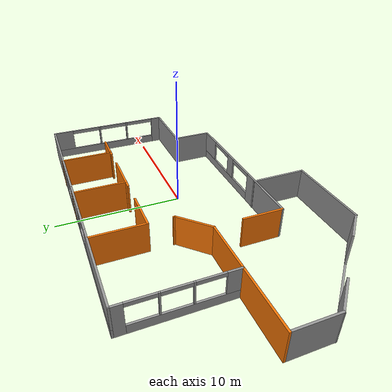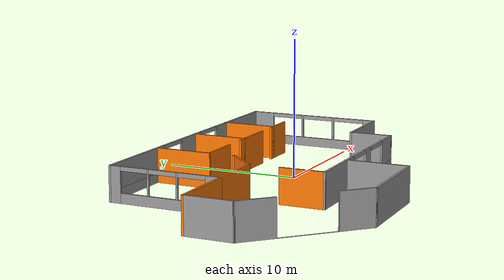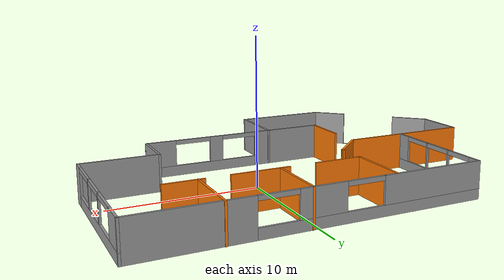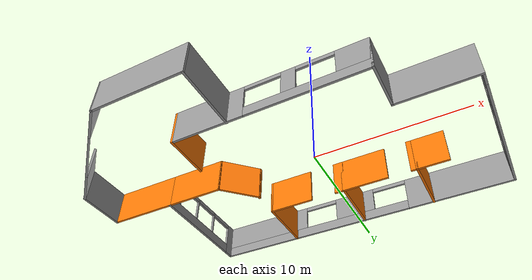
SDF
<?xml version='1.0'?>
<sdf version='1.6'>
  <model name='office_walls'>
    <pose frame=''>-2.62192 -0.658605 0 0 -0 0</pose>
    <link name='Wall_10'>
      <pose frame=''>1.96553 -4.56463 0 0 -0 0</pose>
      <visual name='Wall_10_Visual_0'>
        <pose frame=''>-4.05781 0 1.25 0 -0 0</pose>
        <geometry>
          <box>
            <size>5.13439 0.15 2.5</size>
          </box>
        </geometry>
        <material>
          <script>
            <uri>file://media/materials/scripts/gazebo.material</uri>
            <name>Gazebo/Grey</name>
          </script>
          <ambient>1 1 1 1</ambient>
        </material>
        <meta>
          <layer>0</layer>
        </meta>
      </visual>
      <collision name='Wall_10_Collision_0'>
        <geometry>
          <box>
            <size>5.13439 0.15 2.5</size>
          </box>
        </geometry>
        <pose frame=''>-4.05781 0 1.25 0 -0 0</pose>
      </collision>
      <visual name='Wall_10_Visual_1'>
        <pose frame=''>2.56719 0 0.35 0 -0 0</pose>
        <geometry>
          <box>
            <size>8.11561 0.15 0.7</size>
          </box>
        </geometry>
        <material>
          <script>
            <uri>file://media/materials/scripts/gazebo.material</uri>
            <name>Gazebo/Grey</name>
          </script>
          <ambient>1 1 1 1</ambient>
        </material>
        <meta>
          <layer>0</layer>
        </meta>
      </visual>
      <collision name='Wall_10_Collision_1'>
        <geometry>
          <box>
            <size>8.11561 0.15 0.7</size>
          </box>
        </geometry>
        <pose frame=''>2.56719 0 0.35 0 -0 0</pose>
      </collision>
      <visual name='Wall_10_Visual_2'>
        <pose frame=''>1.49239 0 1.6 0 -0 0</pose>
        <geometry>
          <box>
            <size>0.966 0.15 1.8</size>
          </box>
        </geometry>
        <material>
          <script>
            <uri>file://media/materials/scripts/gazebo.material</uri>
            <name>Gazebo/Grey</name>
          </script>
          <ambient>1 1 1 1</ambient>
        </material>
        <meta>
          <layer>0</layer>
        </meta>
      </visual>
      <collision name='Wall_10_Collision_2'>
        <geometry>
          <box>
            <size>0.966 0.15 1.8</size>
          </box>
        </geometry>
        <pose frame=''>1.49239 0 1.6 0 -0 0</pose>
      </collision>
      <visual name='Wall_10_Visual_3'>
        <pose frame=''>5.5502 0 1.6 0 -0 0</pose>
        <geometry>
          <box>
            <size>2.14961 0.15 1.8</size>
          </box>
        </geometry>
        <material>
          <script>
            <uri>file://media/materials/scripts/gazebo.material</uri>
            <name>Gazebo/Grey</name>
          </script>
          <ambient>1 1 1 1</ambient>
        </material>
        <meta>
          <layer>0</layer>
        </meta>
      </visual>
      <collision name='Wall_10_Collision_3'>
        <geometry>
          <box>
            <size>2.14961 0.15 1.8</size>
          </box>
        </geometry>
        <pose frame=''>5.5502 0 1.6 0 -0 0</pose>
      </collision>
      <visual name='Wall_10_Visual_4'>
        <pose frame=''>-0.240611 0 2.35 0 -0 0</pose>
        <geometry>
          <box>
            <size>2.5 0.15 0.3</size>
          </box>
        </geometry>
        <material>
          <script>
            <uri>file://media/materials/scripts/gazebo.material</uri>
            <name>Gazebo/Grey</name>
          </script>
          <ambient>1 1 1 1</ambient>
        </material>
        <meta>
          <layer>0</layer>
        </meta>
      </visual>
      <collision name='Wall_10_Collision_4'>
        <geometry>
          <box>
            <size>2.5 0.15 0.3</size>
          </box>
        </geometry>
        <pose frame=''>-0.240611 0 2.35 0 -0 0</pose>
      </collision>
      <visual name='Wall_10_Visual_5'>
        <pose frame=''>3.22539 0 2.35 0 -0 0</pose>
        <geometry>
          <box>
            <size>2.5 0.15 0.3</size>
          </box>
        </geometry>
        <material>
          <script>
            <uri>file://media/materials/scripts/gazebo.material</uri>
            <name>Gazebo/Grey</name>
          </script>
          <ambient>1 1 1 1</ambient>
        </material>
        <meta>
          <layer>0</layer>
        </meta>
      </visual>
      <collision name='Wall_10_Collision_5'>
        <geometry>
          <box>
            <size>2.5 0.15 0.3</size>
          </box>
        </geometry>
        <pose frame=''>3.22539 0 2.35 0 -0 0</pose>
      </collision>
    </link>
    <link name='Wall_11'>
      <collision name='Wall_11_Collision'>
        <geometry>
          <box>
            <size>3.25 0.15 2.5</size>
          </box>
        </geometry>
        <pose frame=''>0 0 1.25 0 -0 0</pose>
      </collision>
      <visual name='Wall_11_Visual'>
        <pose frame=''>0 0 1.25 0 -0 0</pose>
        <geometry>
          <box>
            <size>3.25 0.15 2.5</size>
          </box>
        </geometry>
        <material>
          <script>
            <uri>file://media/materials/scripts/gazebo.material</uri>
            <name>Gazebo/Grey</name>
          </script>
          <ambient>1 1 1 1</ambient>
        </material>
        <meta>
          <layer>0</layer>
        </meta>
      </visual>
      <pose frame=''>8.51553 -3.01463 0 0 -0 1.5708</pose>
    </link>
    <link name='Wall_12'>
      <collision name='Wall_12_Collision'>
        <geometry>
          <box>
            <size>5.25 0.15 2.5</size>
          </box>
        </geometry>
        <pose frame=''>0 0 1.25 0 -0 0</pose>
      </collision>
      <visual name='Wall_12_Visual'>
        <pose frame=''>0 0 1.25 0 -0 0</pose>
        <geometry>
          <box>
            <size>5.25 0.15 2.5</size>
          </box>
        </geometry>
        <material>
          <script>
            <uri>file://media/materials/scripts/gazebo.material</uri>
            <name>Gazebo/Grey</name>
          </script>
          <ambient>1 1 1 1</ambient>
        </material>
        <meta>
          <layer>0</layer>
        </meta>
      </visual>
      <pose frame=''>11.0655 -1.46463 0 0 -0 0</pose>
    </link>
    <link name='Wall_14'>
      <pose frame=''>13.6155 3.71037 0 0 -0 1.5708</pose>
      <visual name='Wall_14_Visual_0'>
        <pose frame=''>-4.77588 0 1.25 0 -0 0</pose>
        <geometry>
          <box>
            <size>0.948232 0.15 2.5</size>
          </box>
        </geometry>
        <material>
          <script>
            <uri>file://media/materials/scripts/gazebo.material</uri>
            <name>Gazebo/Grey</name>
          </script>
          <ambient>1 1 1 1</ambient>
        </material>
        <meta>
          <layer>0</layer>
        </meta>
      </visual>
      <collision name='Wall_14_Collision_0'>
        <geometry>
          <box>
            <size>0.948232 0.15 2.5</size>
          </box>
        </geometry>
        <pose frame=''>-4.77588 0 1.25 0 -0 0</pose>
      </collision>
      <visual name='Wall_14_Visual_1'>
        <pose frame=''>0.474116 0 0.35 0 -0 0</pose>
        <geometry>
          <box>
            <size>9.55177 0.15 0.7</size>
          </box>
        </geometry>
        <material>
          <script>
            <uri>file://media/materials/scripts/gazebo.material</uri>
            <name>Gazebo/Grey</name>
          </script>
          <ambient>1 1 1 1</ambient>
        </material>
        <meta>
          <layer>0</layer>
        </meta>
      </visual>
      <collision name='Wall_14_Collision_1'>
        <geometry>
          <box>
            <size>9.55177 0.15 0.7</size>
          </box>
        </geometry>
        <pose frame=''>0.474116 0 0.35 0 -0 0</pose>
      </collision>
      <visual name='Wall_14_Visual_2'>
        <pose frame=''>-1.72677 0 1.6 0 -0 0</pose>
        <geometry>
          <box>
            <size>0.15 0.15 1.8</size>
          </box>
        </geometry>
        <material>
          <script>
            <uri>file://media/materials/scripts/gazebo.material</uri>
            <name>Gazebo/Grey</name>
          </script>
          <ambient>1 1 1 1</ambient>
        </material>
        <meta>
          <layer>0</layer>
        </meta>
      </visual>
      <collision name='Wall_14_Collision_2'>
        <geometry>
          <box>
            <size>0.15 0.15 1.8</size>
          </box>
        </geometry>
        <pose frame=''>-1.72677 0 1.6 0 -0 0</pose>
      </collision>
      <visual name='Wall_14_Visual_3'>
        <pose frame=''>0.923233 0 1.6 0 -0 0</pose>
        <geometry>
          <box>
            <size>0.15 0.15 1.8</size>
          </box>
        </geometry>
        <material>
          <script>
            <uri>file://media/materials/scripts/gazebo.material</uri>
            <name>Gazebo/Grey</name>
          </script>
          <ambient>1 1 1 1</ambient>
        </material>
        <meta>
          <layer>0</layer>
        </meta>
      </visual>
      <collision name='Wall_14_Collision_3'>
        <geometry>
          <box>
            <size>0.15 0.15 1.8</size>
          </box>
        </geometry>
        <pose frame=''>0.923233 0 1.6 0 -0 0</pose>
      </collision>
      <visual name='Wall_14_Visual_4'>
        <pose frame=''>4.37412 0 1.6 0 -0 0</pose>
        <geometry>
          <box>
            <size>1.75177 0.15 1.8</size>
          </box>
        </geometry>
        <material>
          <script>
            <uri>file://media/materials/scripts/gazebo.material</uri>
            <name>Gazebo/Grey</name>
          </script>
          <ambient>1 1 1 1</ambient>
        </material>
        <meta>
          <layer>0</layer>
        </meta>
      </visual>
      <collision name='Wall_14_Collision_4'>
        <geometry>
          <box>
            <size>1.75177 0.15 1.8</size>
          </box>
        </geometry>
        <pose frame=''>4.37412 0 1.6 0 -0 0</pose>
      </collision>
      <visual name='Wall_14_Visual_5'>
        <pose frame=''>-3.05177 0 2.35 0 -0 0</pose>
        <geometry>
          <box>
            <size>2.5 0.15 0.3</size>
          </box>
        </geometry>
        <material>
          <script>
            <uri>file://media/materials/scripts/gazebo.material</uri>
            <name>Gazebo/Grey</name>
          </script>
          <ambient>1 1 1 1</ambient>
        </material>
        <meta>
          <layer>0</layer>
        </meta>
      </visual>
      <collision name='Wall_14_Collision_5'>
        <geometry>
          <box>
            <size>2.5 0.15 0.3</size>
          </box>
        </geometry>
        <pose frame=''>-3.05177 0 2.35 0 -0 0</pose>
      </collision>
      <visual name='Wall_14_Visual_6'>
        <pose frame=''>-0.401767 0 2.35 0 -0 0</pose>
        <geometry>
          <box>
            <size>2.5 0.15 0.3</size>
          </box>
        </geometry>
        <material>
          <script>
            <uri>file://media/materials/scripts/gazebo.material</uri>
            <name>Gazebo/Grey</name>
          </script>
          <ambient>1 1 1 1</ambient>
        </material>
        <meta>
          <layer>0</layer>
        </meta>
      </visual>
      <collision name='Wall_14_Collision_6'>
        <geometry>
          <box>
            <size>2.5 0.15 0.3</size>
          </box>
        </geometry>
        <pose frame=''>-0.401767 0 2.35 0 -0 0</pose>
      </collision>
      <visual name='Wall_14_Visual_7'>
        <pose frame=''>2.24823 0 2.35 0 -0 0</pose>
        <geometry>
          <box>
            <size>2.5 0.15 0.3</size>
          </box>
        </geometry>
        <material>
          <script>
            <uri>file://media/materials/scripts/gazebo.material</uri>
            <name>Gazebo/Grey</name>
          </script>
          <ambient>1 1 1 1</ambient>
        </material>
        <meta>
          <layer>0</layer>
        </meta>
      </visual>
      <collision name='Wall_14_Collision_7'>
        <geometry>
          <box>
            <size>2.5 0.15 0.3</size>
          </box>
        </geometry>
        <pose frame=''>2.24823 0 2.35 0 -0 0</pose>
      </collision>
    </link>
    <link name='Wall_20'>
      <pose frame=''>2.44053 8.88537 0 0 -0 3.14159</pose>
      <visual name='Wall_20_Visual_0'>
        <pose frame=''>-7.55969 0 1.25 0 -0 0</pose>
        <geometry>
          <box>
            <size>7.38061 0.15 2.5</size>
          </box>
        </geometry>
        <material>
          <script>
            <uri>file://media/materials/scripts/gazebo.material</uri>
            <name>Gazebo/Grey</name>
          </script>
          <ambient>1 1 1 1</ambient>
        </material>
        <meta>
          <layer>0</layer>
        </meta>
      </visual>
      <collision name='Wall_20_Collision_0'>
        <geometry>
          <box>
            <size>7.38061 0.15 2.5</size>
          </box>
        </geometry>
        <pose frame=''>-7.55969 0 1.25 0 -0 0</pose>
      </collision>
      <visual name='Wall_20_Visual_1'>
        <pose frame=''>3.6903 0 0.35 0 -0 0</pose>
        <geometry>
          <box>
            <size>15.1194 0.15 0.7</size>
          </box>
        </geometry>
        <material>
          <script>
            <uri>file://media/materials/scripts/gazebo.material</uri>
            <name>Gazebo/Grey</name>
          </script>
          <ambient>1 1 1 1</ambient>
        </material>
        <meta>
          <layer>0</layer>
        </meta>
      </visual>
      <collision name='Wall_20_Collision_1'>
        <geometry>
          <box>
            <size>15.1194 0.15 0.7</size>
          </box>
        </geometry>
        <pose frame=''>3.6903 0 0.35 0 -0 0</pose>
      </collision>
      <visual name='Wall_20_Visual_2'>
        <pose frame=''>0.149611 0 1.6 0 -0 0</pose>
        <geometry>
          <box>
            <size>3.038 0.15 1.8</size>
          </box>
        </geometry>
        <material>
          <script>
            <uri>file://media/materials/scripts/gazebo.material</uri>
            <name>Gazebo/Grey</name>
          </script>
          <ambient>1 1 1 1</ambient>
        </material>
        <meta>
          <layer>0</layer>
        </meta>
      </visual>
      <collision name='Wall_20_Collision_2'>
        <geometry>
          <box>
            <size>3.038 0.15 1.8</size>
          </box>
        </geometry>
        <pose frame=''>0.149611 0 1.6 0 -0 0</pose>
      </collision>
      <visual name='Wall_20_Visual_3'>
        <pose frame=''>7.7093 0 1.6 0 -0 0</pose>
        <geometry>
          <box>
            <size>7.08139 0.15 1.8</size>
          </box>
        </geometry>
        <material>
          <script>
            <uri>file://media/materials/scripts/gazebo.material</uri>
            <name>Gazebo/Grey</name>
          </script>
          <ambient>1 1 1 1</ambient>
        </material>
        <meta>
          <layer>0</layer>
        </meta>
      </visual>
      <collision name='Wall_20_Collision_3'>
        <geometry>
          <box>
            <size>7.08139 0.15 1.8</size>
          </box>
        </geometry>
        <pose frame=''>7.7093 0 1.6 0 -0 0</pose>
      </collision>
      <visual name='Wall_20_Visual_4'>
        <pose frame=''>-2.61939 0 2.35 0 -0 0</pose>
        <geometry>
          <box>
            <size>2.5 0.15 0.3</size>
          </box>
        </geometry>
        <material>
          <script>
            <uri>file://media/materials/scripts/gazebo.material</uri>
            <name>Gazebo/Grey</name>
          </script>
          <ambient>1 1 1 1</ambient>
        </material>
        <meta>
          <layer>0</layer>
        </meta>
      </visual>
      <collision name='Wall_20_Collision_4'>
        <geometry>
          <box>
            <size>2.5 0.15 0.3</size>
          </box>
        </geometry>
        <pose frame=''>-2.61939 0 2.35 0 -0 0</pose>
      </collision>
      <visual name='Wall_20_Visual_5'>
        <pose frame=''>2.91861 0 2.35 0 -0 0</pose>
        <geometry>
          <box>
            <size>2.5 0.15 0.3</size>
          </box>
        </geometry>
        <material>
          <script>
            <uri>file://media/materials/scripts/gazebo.material</uri>
            <name>Gazebo/Grey</name>
          </script>
          <ambient>1 1 1 1</ambient>
        </material>
        <meta>
          <layer>0</layer>
        </meta>
      </visual>
      <collision name='Wall_20_Collision_5'>
        <geometry>
          <box>
            <size>2.5 0.15 0.3</size>
          </box>
        </geometry>
        <pose frame=''>2.91861 0 2.35 0 -0 0</pose>
      </collision>
    </link>
    <link name='Wall_21'>
      <pose frame=''>-8.73447 4.83537 0 0 -0 -1.5708</pose>
      <visual name='Wall_21_Visual_0'>
        <pose frame=''>-3.68162 0 1.25 0 -0 0</pose>
        <geometry>
          <box>
            <size>0.886767 0.15 2.5</size>
          </box>
        </geometry>
        <material>
          <script>
            <uri>file://media/materials/scripts/gazebo.material</uri>
            <name>Gazebo/Grey</name>
          </script>
          <ambient>1 1 1 1</ambient>
        </material>
        <meta>
          <layer>0</layer>
        </meta>
      </visual>
      <collision name='Wall_21_Collision_0'>
        <geometry>
          <box>
            <size>0.886767 0.15 2.5</size>
          </box>
        </geometry>
        <pose frame=''>-3.68162 0 1.25 0 -0 0</pose>
      </collision>
      <visual name='Wall_21_Visual_1'>
        <pose frame=''>0.443384 0 0.35 0 -0 0</pose>
        <geometry>
          <box>
            <size>7.36323 0.15 0.7</size>
          </box>
        </geometry>
        <material>
          <script>
            <uri>file://media/materials/scripts/gazebo.material</uri>
            <name>Gazebo/Grey</name>
          </script>
          <ambient>1 1 1 1</ambient>
        </material>
        <meta>
          <layer>0</layer>
        </meta>
      </visual>
      <collision name='Wall_21_Collision_1'>
        <geometry>
          <box>
            <size>7.36323 0.15 0.7</size>
          </box>
        </geometry>
        <pose frame=''>0.443384 0 0.35 0 -0 0</pose>
      </collision>
      <visual name='Wall_21_Visual_2'>
        <pose frame=''>-1.17523 0 1.6 0 -0 0</pose>
        <geometry>
          <box>
            <size>0.126 0.15 1.8</size>
          </box>
        </geometry>
        <material>
          <script>
            <uri>file://media/materials/scripts/gazebo.material</uri>
            <name>Gazebo/Grey</name>
          </script>
          <ambient>1 1 1 1</ambient>
        </material>
        <meta>
          <layer>0</layer>
        </meta>
      </visual>
      <collision name='Wall_21_Collision_2'>
        <geometry>
          <box>
            <size>0.126 0.15 1.8</size>
          </box>
        </geometry>
        <pose frame=''>-1.17523 0 1.6 0 -0 0</pose>
      </collision>
      <visual name='Wall_21_Visual_3'>
        <pose frame=''>0.951558 0 1.6 0 -0 0</pose>
        <geometry>
          <box>
            <size>0.127582 0.15 1.8</size>
          </box>
        </geometry>
        <material>
          <script>
            <uri>file://media/materials/scripts/gazebo.material</uri>
            <name>Gazebo/Grey</name>
          </script>
          <ambient>1 1 1 1</ambient>
        </material>
        <meta>
          <layer>0</layer>
        </meta>
      </visual>
      <collision name='Wall_21_Collision_3'>
        <geometry>
          <box>
            <size>0.127582 0.15 1.8</size>
          </box>
        </geometry>
        <pose frame=''>0.951558 0 1.6 0 -0 0</pose>
      </collision>
      <visual name='Wall_21_Visual_4'>
        <pose frame=''>3.57017 0 1.6 0 -0 0</pose>
        <geometry>
          <box>
            <size>1.10965 0.15 1.8</size>
          </box>
        </geometry>
        <material>
          <script>
            <uri>file://media/materials/scripts/gazebo.material</uri>
            <name>Gazebo/Grey</name>
          </script>
          <ambient>1 1 1 1</ambient>
        </material>
        <meta>
          <layer>0</layer>
        </meta>
      </visual>
      <collision name='Wall_21_Collision_4'>
        <geometry>
          <box>
            <size>1.10965 0.15 1.8</size>
          </box>
        </geometry>
        <pose frame=''>3.57017 0 1.6 0 -0 0</pose>
      </collision>
      <visual name='Wall_21_Visual_5'>
        <pose frame=''>-2.23823 0 2.35 0 -0 0</pose>
        <geometry>
          <box>
            <size>2 0.15 0.3</size>
          </box>
        </geometry>
        <material>
          <script>
            <uri>file://media/materials/scripts/gazebo.material</uri>
            <name>Gazebo/Grey</name>
          </script>
          <ambient>1 1 1 1</ambient>
        </material>
        <meta>
          <layer>0</layer>
        </meta>
      </visual>
      <collision name='Wall_21_Collision_5'>
        <geometry>
          <box>
            <size>2 0.15 0.3</size>
          </box>
        </geometry>
        <pose frame=''>-2.23823 0 2.35 0 -0 0</pose>
      </collision>
      <visual name='Wall_21_Visual_6'>
        <pose frame=''>-0.112233 0 2.35 0 -0 0</pose>
        <geometry>
          <box>
            <size>2 0.15 0.3</size>
          </box>
        </geometry>
        <material>
          <script>
            <uri>file://media/materials/scripts/gazebo.material</uri>
            <name>Gazebo/Grey</name>
          </script>
          <ambient>1 1 1 1</ambient>
        </material>
        <meta>
          <layer>0</layer>
        </meta>
      </visual>
      <collision name='Wall_21_Collision_6'>
        <geometry>
          <box>
            <size>2 0.15 0.3</size>
          </box>
        </geometry>
        <pose frame=''>-0.112233 0 2.35 0 -0 0</pose>
      </collision>
      <visual name='Wall_21_Visual_7'>
        <pose frame=''>2.01535 0 2.35 0 -0 0</pose>
        <geometry>
          <box>
            <size>2 0.15 0.3</size>
          </box>
        </geometry>
        <material>
          <script>
            <uri>file://media/materials/scripts/gazebo.material</uri>
            <name>Gazebo/Grey</name>
          </script>
          <ambient>1 1 1 1</ambient>
        </material>
        <meta>
          <layer>0</layer>
        </meta>
      </visual>
      <collision name='Wall_21_Collision_7'>
        <geometry>
          <box>
            <size>2 0.15 0.3</size>
          </box>
        </geometry>
        <pose frame=''>2.01535 0 2.35 0 -0 0</pose>
      </collision>
    </link>
    <link name='Wall_22'>
      <collision name='Wall_22_Collision'>
        <geometry>
          <box>
            <size>4.25 0.15 2.5</size>
          </box>
        </geometry>
        <pose frame=''>0 0 1.25 0 -0 0</pose>
      </collision>
      <visual name='Wall_22_Visual'>
        <pose frame=''>0 0 1.25 0 -0 0</pose>
        <geometry>
          <box>
            <size>4.25 0.15 2.5</size>
          </box>
        </geometry>
        <material>
          <script>
            <uri>file://media/materials/scripts/gazebo.material</uri>
            <name>Gazebo/Grey</name>
          </script>
          <ambient>0.996078 0.47451 0.0196078 1</ambient>
        </material>
        <meta>
          <layer>0</layer>
        </meta>
      </visual>
      <pose frame=''>-6.68447 0.785372 0 0 -0 0</pose>
    </link>
    <link name='Wall_23'>
      <collision name='Wall_23_Collision'>
        <geometry>
          <box>
            <size>3 0.15 2.5</size>
          </box>
        </geometry>
        <pose frame=''>0 0 1.25 0 -0 0</pose>
      </collision>
      <visual name='Wall_23_Visual'>
        <pose frame=''>0 0 1.25 0 -0 0</pose>
        <geometry>
          <box>
            <size>3 0.15 2.5</size>
          </box>
        </geometry>
        <material>
          <script>
            <uri>file://media/materials/scripts/gazebo.material</uri>
            <name>Gazebo/Grey</name>
          </script>
          <ambient>0.996078 0.47451 0.0196078 1</ambient>
        </material>
        <meta>
          <layer>0</layer>
        </meta>
      </visual>
      <pose frame=''>-3.62684 1.793 0 0 -0 0.785398</pose>
    </link>
    <link name='Wall_24'>
      <collision name='Wall_24_Collision'>
        <geometry>
          <box>
            <size>0.25 0.15 2.5</size>
          </box>
        </geometry>
        <pose frame=''>0 0 1.25 0 -0 0</pose>
      </collision>
      <visual name='Wall_24_Visual'>
        <pose frame=''>0 0 1.25 0 -0 0</pose>
        <geometry>
          <box>
            <size>0.25 0.15 2.5</size>
          </box>
        </geometry>
        <material>
          <script>
            <uri>file://media/materials/scripts/gazebo.material</uri>
            <name>Gazebo/Grey</name>
          </script>
          <ambient>0.996078 0.47451 0.0196078 1</ambient>
        </material>
        <meta>
          <layer>0</layer>
        </meta>
      </visual>
      <pose frame=''>-2.61922 2.85063 0 0 -0 1.5708</pose>
    </link>
    <link name='Wall_26'>
      <collision name='Wall_26_Collision'>
        <geometry>
          <box>
            <size>4.25 0.15 2.5</size>
          </box>
        </geometry>
        <pose frame=''>0 0 1.25 0 -0 0</pose>
      </collision>
      <visual name='Wall_26_Visual'>
        <pose frame=''>0 0 1.25 0 -0 0</pose>
        <geometry>
          <box>
            <size>4.25 0.15 2.5</size>
          </box>
        </geometry>
        <material>
          <script>
            <uri>file://media/materials/scripts/gazebo.material</uri>
            <name>Gazebo/Grey</name>
          </script>
          <ambient>0.996078 0.47451 0.0196078 1</ambient>
        </material>
        <meta>
          <layer>0</layer>
        </meta>
      </visual>
      <pose frame=''>-2.63704 6.83452 0 0 -0 -1.5708</pose>
    </link>
    <link name='Wall_28'>
      <collision name='Wall_28_Collision'>
        <geometry>
          <box>
            <size>3.25 0.15 2.5</size>
          </box>
        </geometry>
        <pose frame=''>0 0 1.25 0 -0 0</pose>
      </collision>
      <visual name='Wall_28_Visual'>
        <pose frame=''>0 0 1.25 0 -0 0</pose>
        <geometry>
          <box>
            <size>3.25 0.15 2.5</size>
          </box>
        </geometry>
        <material>
          <script>
            <uri>file://media/materials/scripts/gazebo.material</uri>
            <name>Gazebo/Grey</name>
          </script>
          <ambient>0.996078 0.47451 0.0196078 1</ambient>
        </material>
        <meta>
          <layer>0</layer>
        </meta>
      </visual>
      <pose frame=''>-1.08704 4.78452 0 0 -0 0</pose>
    </link>
    <link name='Wall_30'>
      <collision name='Wall_30_Collision'>
        <geometry>
          <box>
            <size>0.719583 0.15 2.5</size>
          </box>
        </geometry>
        <pose frame=''>0 0 1.25 0 -0 0</pose>
      </collision>
      <visual name='Wall_30_Visual'>
        <pose frame=''>0 0 1.25 0 -0 0</pose>
        <geometry>
          <box>
            <size>0.719583 0.15 2.5</size>
          </box>
        </geometry>
        <material>
          <script>
            <uri>file://media/materials/scripts/gazebo.material</uri>
            <name>Gazebo/Grey</name>
          </script>
          <ambient>0.996078 0.47451 0.0196078 1</ambient>
        </material>
        <meta>
          <layer>0</layer>
        </meta>
      </visual>
      <pose frame=''>2.65237 4.80552 0 0 -0 0</pose>
    </link>
    <link name='Wall_31'>
      <collision name='Wall_31_Collision'>
        <geometry>
          <box>
            <size>4.25 0.15 2.5</size>
          </box>
        </geometry>
        <pose frame=''>0 0 1.25 0 -0 0</pose>
      </collision>
      <visual name='Wall_31_Visual'>
        <pose frame=''>0 0 1.25 0 -0 0</pose>
        <geometry>
          <box>
            <size>4.25 0.15 2.5</size>
          </box>
        </geometry>
        <material>
          <script>
            <uri>file://media/materials/scripts/gazebo.material</uri>
            <name>Gazebo/Grey</name>
          </script>
          <ambient>0.996078 0.47451 0.0196078 1</ambient>
        </material>
        <meta>
          <layer>0</layer>
        </meta>
      </visual>
      <pose frame=''>2.95237 6.85552 0 0 -0 1.5708</pose>
    </link>
    <link name='Wall_33'>
      <collision name='Wall_33_Collision'>
        <geometry>
          <box>
            <size>3.28042 0.15 2.5</size>
          </box>
        </geometry>
        <pose frame=''>0 0 1.25 0 -0 0</pose>
      </collision>
      <visual name='Wall_33_Visual'>
        <pose frame=''>0 0 1.25 0 -0 0</pose>
        <geometry>
          <box>
            <size>3.28042 0.15 2.5</size>
          </box>
        </geometry>
        <material>
          <script>
            <uri>file://media/materials/scripts/gazebo.material</uri>
            <name>Gazebo/Grey</name>
          </script>
          <ambient>0.996078 0.47451 0.0196078 1</ambient>
        </material>
        <meta>
          <layer>0</layer>
        </meta>
      </visual>
      <pose frame=''>4.50237 4.80552 0 0 -0 0</pose>
    </link>
    <link name='Wall_43'>
      <collision name='Wall_43_Collision'>
        <geometry>
          <box>
            <size>0.5 0.15 2.5</size>
          </box>
        </geometry>
        <pose frame=''>0 0 1.25 0 -0 0</pose>
      </collision>
      <visual name='Wall_43_Visual'>
        <pose frame=''>0 0 1.25 0 -0 0</pose>
        <geometry>
          <box>
            <size>0.5 0.15 2.5</size>
          </box>
        </geometry>
        <material>
          <script>
            <uri>file://media/materials/scripts/gazebo.material</uri>
            <name>Gazebo/Grey</name>
          </script>
          <ambient>0.996078 0.47451 0.0196078 1</ambient>
        </material>
        <meta>
          <layer>0</layer>
        </meta>
      </visual>
      <pose frame=''>7.93623 4.82187 0 0 -0 0</pose>
    </link>
    <link name='Wall_44'>
      <collision name='Wall_44_Collision'>
        <geometry>
          <box>
            <size>4.25 0.15 2.5</size>
          </box>
        </geometry>
        <pose frame=''>0 0 1.25 0 -0 0</pose>
      </collision>
      <visual name='Wall_44_Visual'>
        <pose frame=''>0 0 1.25 0 -0 0</pose>
        <geometry>
          <box>
            <size>4.25 0.15 2.5</size>
          </box>
        </geometry>
        <material>
          <script>
            <uri>file://media/materials/scripts/gazebo.material</uri>
            <name>Gazebo/Grey</name>
          </script>
          <ambient>0.996078 0.47451 0.0196078 1</ambient>
        </material>
        <meta>
          <layer>0</layer>
        </meta>
      </visual>
      <pose frame=''>8.11123 6.87187 0 0 -0 1.5708</pose>
    </link>
    <link name='Wall_47'>
      <collision name='Wall_47_Collision'>
        <geometry>
          <box>
            <size>2.25 0.15 2.5</size>
          </box>
        </geometry>
        <pose frame=''>0 0 1.25 0 -0 0</pose>
      </collision>
      <visual name='Wall_47_Visual'>
        <pose frame=''>0 0 1.25 0 -0 0</pose>
        <geometry>
          <box>
            <size>2.25 0.15 2.5</size>
          </box>
        </geometry>
        <material>
          <script>
            <uri>file://media/materials/scripts/gazebo.material</uri>
            <name>Gazebo/Grey</name>
          </script>
          <ambient>0.996078 0.47451 0.0196078 1</ambient>
        </material>
        <meta>
          <layer>0</layer>
        </meta>
      </visual>
      <pose frame=''>9.16123 4.82187 0 0 -0 0</pose>
    </link>
    <link name='Wall_49'>
      <collision name='Wall_49_Collision'>
        <geometry>
          <box>
            <size>5 0.15 2.5</size>
          </box>
        </geometry>
        <pose frame=''>0 0 1.25 0 -0 0</pose>
      </collision>
      <visual name='Wall_49_Visual'>
        <pose frame=''>0 0 1.25 0 -0 0</pose>
        <geometry>
          <box>
            <size>5 0.15 2.5</size>
          </box>
        </geometry>
        <material>
          <script>
            <uri>file://media/materials/scripts/gazebo.material</uri>
            <name>Gazebo/Grey</name>
          </script>
          <ambient>0.996078 0.47451 0.0196078 1</ambient>
        </material>
        <meta>
          <layer>0</layer>
        </meta>
      </visual>
      <pose frame=''>-11.1595 0.785372 0 0 -0 3.14159</pose>
    </link>
    <link name='Wall_52'>
      <collision name='Wall_52_Collision'>
        <geometry>
          <box>
            <size>3.5 0.15 2.5</size>
          </box>
        </geometry>
        <pose frame=''>0 0 1.25 0 -0 0</pose>
      </collision>
      <visual name='Wall_52_Visual'>
        <pose frame=''>0 0 1.25 0 -0 0</pose>
        <geometry>
          <box>
            <size>3.5 0.15 2.5</size>
          </box>
        </geometry>
        <material>
          <script>
            <uri>file://media/materials/scripts/gazebo.material</uri>
            <name>Gazebo/Grey</name>
          </script>
          <ambient>1 1 1 1</ambient>
        </material>
        <meta>
          <layer>0</layer>
        </meta>
      </visual>
      <pose frame=''>-13.5845 -0.889628 0 0 -0 -1.5708</pose>
    </link>
    <link name='Wall_58'>
      <collision name='Wall_58_Collision'>
        <geometry>
          <box>
            <size>4.5 0.15 2.5</size>
          </box>
        </geometry>
        <pose frame=''>0 0 1.25 0 -0 0</pose>
      </collision>
      <visual name='Wall_58_Visual'>
        <pose frame=''>0 0 1.25 0 -0 0</pose>
        <geometry>
          <box>
            <size>4.5 0.15 2.5</size>
          </box>
        </geometry>
        <material>
          <script>
            <uri>file://media/materials/scripts/gazebo.material</uri>
            <name>Gazebo/Grey</name>
          </script>
          <ambient>1 1 1 1</ambient>
        </material>
        <meta>
          <layer>0</layer>
        </meta>
      </visual>
      <pose frame=''>-0.657333 -6.71581 0 0 -0 -1.5708</pose>
    </link>
    <link name='Wall_59'>
      <collision name='Wall_59_Collision'>
        <geometry>
          <box>
            <size>6.56961 0.15 2.5</size>
          </box>
        </geometry>
        <pose frame=''>0 0 1.25 0 -0 0</pose>
      </collision>
      <visual name='Wall_59_Visual'>
        <pose frame=''>0 0 1.25 0 -0 0</pose>
        <geometry>
          <box>
            <size>6.56961 0.15 2.5</size>
          </box>
        </geometry>
        <material>
          <script>
            <uri>file://media/materials/scripts/gazebo.material</uri>
            <name>Gazebo/Grey</name>
          </script>
          <ambient>1 1 1 1</ambient>
        </material>
        <meta>
          <layer>0</layer>
        </meta>
      </visual>
      <pose frame=''>-3.86714 -8.89081 0 0 -0 3.14159</pose>
    </link>
    <link name='Wall_64'>
      <pose frame=''>-10.3307 -5.72772 0 0 -0 -0.771269</pose>
      <visual name='Wall_64_Visual_0'>
        <pose frame=''>-3.25873 0 1.25 0 -0 0</pose>
        <geometry>
          <box>
            <size>2.70826 0.15 2.5</size>
          </box>
        </geometry>
        <material>
          <script>
            <uri>file://media/materials/scripts/gazebo.material</uri>
            <name>Gazebo/Grey</name>
          </script>
          <ambient>1 1 1 1</ambient>
        </material>
        <meta>
          <layer>0</layer>
        </meta>
      </visual>
      <collision name='Wall_64_Collision_0'>
        <geometry>
          <box>
            <size>2.70826 0.15 2.5</size>
          </box>
        </geometry>
        <pose frame=''>-3.25873 0 1.25 0 -0 0</pose>
      </collision>
      <visual name='Wall_64_Visual_1'>
        <pose frame=''>3.35413 0 1.25 0 -0 0</pose>
        <geometry>
          <box>
            <size>2.51745 0.15 2.5</size>
          </box>
        </geometry>
        <material>
          <script>
            <uri>file://media/materials/scripts/gazebo.material</uri>
            <name>Gazebo/Grey</name>
          </script>
          <ambient>1 1 1 1</ambient>
        </material>
        <meta>
          <layer>0</layer>
        </meta>
      </visual>
      <collision name='Wall_64_Collision_1'>
        <geometry>
          <box>
            <size>2.51745 0.15 2.5</size>
          </box>
        </geometry>
        <pose frame=''>3.35413 0 1.25 0 -0 0</pose>
      </collision>
      <visual name='Wall_64_Visual_2'>
        <pose frame=''>0.095404 0 0 0 -0 0</pose>
        <geometry>
          <box>
            <size>4 0.15 0</size>
          </box>
        </geometry>
        <material>
          <script>
            <uri>file://media/materials/scripts/gazebo.material</uri>
            <name>Gazebo/Grey</name>
          </script>
          <ambient>1 1 1 1</ambient>
        </material>
        <meta>
          <layer>0</layer>
        </meta>
      </visual>
      <collision name='Wall_64_Collision_2'>
        <geometry>
          <box>
            <size>4 0.15 0</size>
          </box>
        </geometry>
        <pose frame=''>0.095404 0 0 0 -0 0</pose>
      </collision>
    </link>
    <link name='Wall_66'>
      <collision name='Wall_66_Collision'>
        <geometry>
          <box>
            <size>3.25 0.15 2.5</size>
          </box>
        </geometry>
        <pose frame=''>0 0 1.25 0 -0 0</pose>
      </collision>
      <visual name='Wall_66_Visual'>
        <pose frame=''>0 0 1.25 0 -0 0</pose>
        <geometry>
          <box>
            <size>3.25 0.15 2.5</size>
          </box>
        </geometry>
        <material>
          <script>
            <uri>file://media/materials/scripts/gazebo.material</uri>
            <name>Gazebo/Grey</name>
          </script>
          <ambient>0.996078 0.47451 0.0196078 1</ambient>
        </material>
        <meta>
          <layer>0</layer>
        </meta>
      </visual>
      <pose frame=''>-4.58447 -3.01463 0 0 -0 1.5708</pose>
    </link>
    <static>1</static>
  </model>
</sdf>
